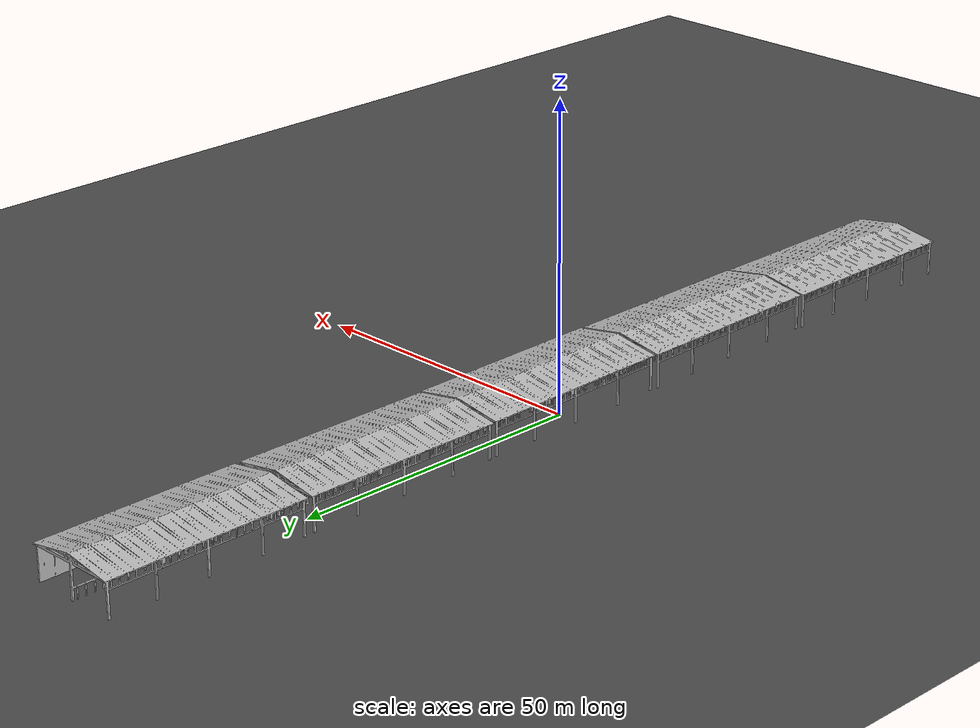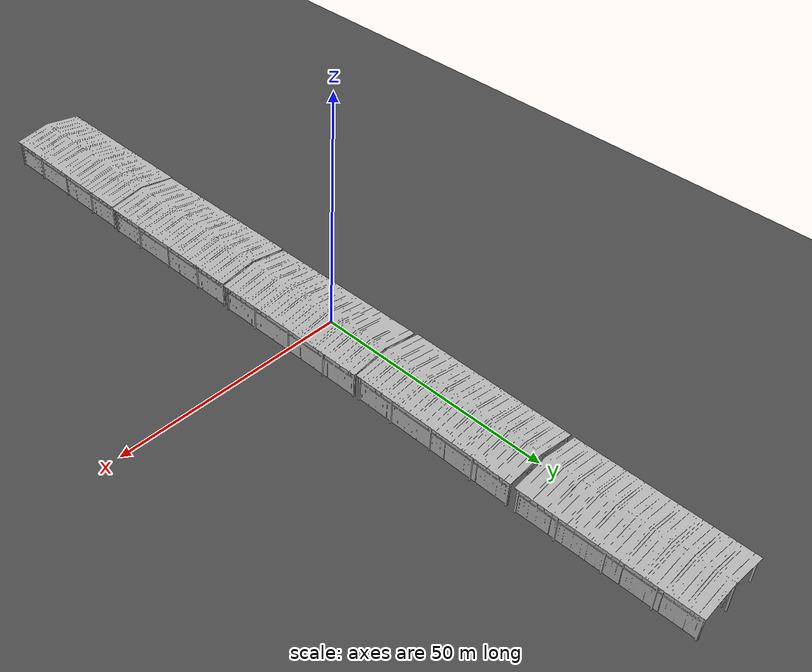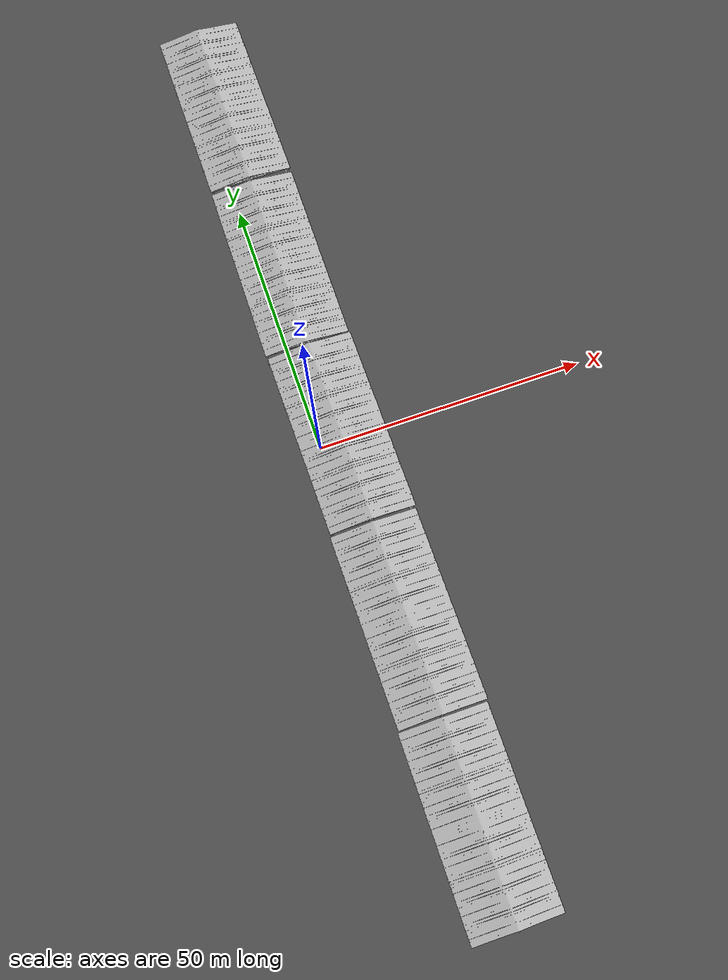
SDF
<sdf version="1.7">
 <world name="default">
  <model name="ground_plane">
   <static>1</static>
   <link name="link">
    <collision name="collision">
     <geometry><plane><normal>0 0 1</normal><size>2000 2000</size></plane></geometry>
     <surface>
      <contact><collide_bitmask>65535</collide_bitmask></contact>
      <friction><ode><mu>100</mu><mu2>50</mu2></ode></friction>
     </surface>
    </collision>
    <visual name="visual">
     <cast_shadows>0</cast_shadows>
     <geometry><plane><normal>0 0 1</normal><size>200 200</size></plane></geometry>
     <material>
      <script><uri>file://media/materials/scripts/gazebo.material</uri><name>Gazebo/DarkGrey</name></script>
     </material>
    </visual>
   </link>
  </model>
  <gravity>0 0 -9.8</gravity>
  <magnetic_field>6e-06 2.3e-05 -4.2e-05</magnetic_field>
  <atmosphere type="adiabatic"/>
  <physics type="ode">
   <max_step_size>0.001</max_step_size>
   <real_time_factor>1</real_time_factor>
   <real_time_update_rate>1000</real_time_update_rate>
  </physics>
  <scene><ambient>0.4 0.4 0.4 1</ambient><background>0.7 0.7 0.7 1</background><shadows>1</shadows></scene>
  <spherical_coordinates>
   <surface_model>EARTH_WGS84</surface_model>
   <latitude_deg>0</latitude_deg>
   <longitude_deg>0</longitude_deg>
   <elevation>0</elevation>
   <heading_deg>0</heading_deg>
  </spherical_coordinates>
  <model name="barn_model">
   <link name="link">
    <inertial>
     <pose>0 0 0 1.5708 -0 0</pose>
     <mass>1</mass>
     <inertia><ixx>24.88</ixx><ixy>0</ixy><ixz>0</ixz><iyy>25.73</iyy><iyz>0</iyz><izz>2.48</izz></inertia>
    </inertial>
    <collision name="bottom">
     <pose>-0.1 -0.1 -0.1 1.5708 -0 0</pose>
     <geometry><box><size>20 20 0.01</size></box></geometry>
    </collision>
    <collision name="barn"><geometry><mesh><uri>model://barn/meshes/barn.obj</uri></mesh></geometry></collision>
    <visual name="visual"><geometry><mesh><uri>model://barn/meshes/barn.obj</uri></mesh></geometry></visual>
   </link>
   <pose>0.021914 0.084875 0.140333 1.5708 -0.001337 0.012962</pose>
  </model>
  <model name="barn_model_clone">
   <link name="link">
    <inertial>
     <pose>0 0 0 1.5708 -0 0</pose>
     <mass>1</mass>
     <inertia><ixx>24.88</ixx><ixy>0</ixy><ixz>0</ixz><iyy>25.73</iyy><iyz>0</iyz><izz>2.48</izz></inertia>
    </inertial>
    <collision name="bottom">
     <pose>-0.1 -0.1 -0.1 1.5708 -0 0</pose>
     <geometry><box><size>20 20 0.01</size></box></geometry>
    </collision>
    <collision name="barn"><geometry><mesh><uri>model://barn/meshes/barn.obj</uri></mesh></geometry></collision>
    <visual name="visual"><geometry><mesh><uri>model://barn/meshes/barn.obj</uri></mesh></geometry></visual>
   </link>
   <pose>0.241326 -34.8953 0.140337 1.5708 -0.001335 0.010268</pose>
  </model>
  <model name="barn_model_clone_0">
   <link name="link">
    <inertial>
     <pose>0 0 0 1.5708 -0 0</pose>
     <mass>1</mass>
     <inertia><ixx>24.88</ixx><ixy>0</ixy><ixz>0</ixz><iyy>25.73</iyy><iyz>0</iyz><izz>2.48</izz></inertia>
    </inertial>
    <collision name="bottom">
     <pose>-0.1 -0.1 -0.1 1.5708 -0 0</pose>
     <geometry><box><size>20 20 0.01</size></box></geometry>
    </collision>
    <collision name="barn"><geometry><mesh><uri>model://barn/meshes/barn.obj</uri></mesh></geometry></collision>
    <visual name="visual"><geometry><mesh><uri>model://barn/meshes/barn.obj</uri></mesh></geometry></visual>
   </link>
   <pose>-0.319562 35.0885 0.140334 1.5708 -0.001336 -0.005224</pose>
  </model>
  <model name="barn_model_clone_1">
   <link name="link">
    <inertial>
     <pose>0 0 0 1.5708 -0 0</pose>
     <mass>1</mass>
     <inertia><ixx>24.88</ixx><ixy>0</ixy><ixz>0</ixz><iyy>25.73</iyy><iyz>0</iyz><izz>2.48</izz></inertia>
    </inertial>
    <collision name="bottom">
     <pose>-0.1 -0.1 -0.1 1.5708 -0 0</pose>
     <geometry><box><size>20 20 0.01</size></box></geometry>
    </collision>
    <collision name="barn"><geometry><mesh><uri>model://barn/meshes/barn.obj</uri></mesh></geometry></collision>
    <visual name="visual"><geometry><mesh><uri>model://barn/meshes/barn.obj</uri></mesh></geometry></visual>
   </link>
   <pose>-0.299103 70.3723 0.140337 1.5708 -0.001335 0.006819</pose>
  </model>
  <model name="barn_model_clone_2">
   <link name="link">
    <inertial>
     <pose>0 0 0 1.5708 -0 0</pose>
     <mass>1</mass>
     <inertia><ixx>24.88</ixx><ixy>0</ixy><ixz>0</ixz><iyy>25.73</iyy><iyz>0</iyz><izz>2.48</izz></inertia>
    </inertial>
    <collision name="bottom">
     <pose>-0.1 -0.1 -0.1 1.5708 -0 0</pose>
     <geometry><box><size>20 20 0.01</size></box></geometry>
    </collision>
    <collision name="barn"><geometry><mesh><uri>model://barn/meshes/barn.obj</uri></mesh></geometry></collision>
    <visual name="visual"><geometry><mesh><uri>model://barn/meshes/barn.obj</uri></mesh></geometry></visual>
   </link>
   <pose>0.267842 -69.7118 0.140337 1.5708 -0.001335 0.002888</pose>
  </model>
  <light name="user_point_light_0" type="point">
   <pose>0.747153 -0.055905 1 0 -0 0</pose>
   <diffuse>0.5 0.5 0.5 1</diffuse>
   <specular>0.1 0.1 0.1 1</specular>
   <attenuation>
    <range>20</range>
    <constant>0.5</constant>
    <linear>0.01</linear>
    <quadratic>0.001</quadratic>
   </attenuation>
   <cast_shadows>0</cast_shadows>
   <direction>0 0 -1</direction>
   <spot><inner_angle>0</inner_angle><outer_angle>0</outer_angle><falloff>0</falloff></spot>
  </light>
  <light name="user_point_light_1" type="point">
   <pose>-0.056925 -9.00053 1 0 -0 0</pose>
   <diffuse>0.5 0.5 0.5 1</diffuse>
   <specular>0.1 0.1 0.1 1</specular>
   <attenuation>
    <range>20</range>
    <constant>0.5</constant>
    <linear>0.01</linear>
    <quadratic>0.001</quadratic>
   </attenuation>
   <cast_shadows>0</cast_shadows>
   <direction>0 0 -1</direction>
   <spot><inner_angle>0</inner_angle><outer_angle>0</outer_angle><falloff>0</falloff></spot>
  </light>
  <light name="user_point_light_2" type="point">
   <pose>1.47172 -17.4098 1 0 -0 0</pose>
   <diffuse>0.5 0.5 0.5 1</diffuse>
   <specular>0.1 0.1 0.1 1</specular>
   <attenuation>
    <range>20</range>
    <constant>0.5</constant>
    <linear>0.01</linear>
    <quadratic>0.001</quadratic>
   </attenuation>
   <cast_shadows>0</cast_shadows>
   <direction>0 0 -1</direction>
   <spot><inner_angle>0</inner_angle><outer_angle>0</outer_angle><falloff>0</falloff></spot>
  </light>
  <light name="user_point_light_3" type="point">
   <pose>1.63322 -25.888 1 0 -0 0</pose>
   <diffuse>0.5 0.5 0.5 1</diffuse>
   <specular>0.1 0.1 0.1 1</specular>
   <attenuation>
    <range>20</range>
    <constant>0.5</constant>
    <linear>0.01</linear>
    <quadratic>0.001</quadratic>
   </attenuation>
   <cast_shadows>0</cast_shadows>
   <direction>0 0 -1</direction>
   <spot><inner_angle>0</inner_angle><outer_angle>0</outer_angle><falloff>0</falloff></spot>
  </light>
  <light name="user_point_light_4" type="point">
   <pose>1.68365 -34.7356 1 0 -0 0</pose>
   <diffuse>0.5 0.5 0.5 1</diffuse>
   <specular>0.1 0.1 0.1 1</specular>
   <attenuation>
    <range>20</range>
    <constant>0.5</constant>
    <linear>0.01</linear>
    <quadratic>0.001</quadratic>
   </attenuation>
   <cast_shadows>0</cast_shadows>
   <direction>0 0 -1</direction>
   <spot><inner_angle>0</inner_angle><outer_angle>0</outer_angle><falloff>0</falloff></spot>
  </light>
  <light name="user_point_light_5" type="point">
   <pose>1.72966 -43.8858 1 0 -0 0</pose>
   <diffuse>0.5 0.5 0.5 1</diffuse>
   <specular>0.1 0.1 0.1 1</specular>
   <attenuation>
    <range>20</range>
    <constant>0.5</constant>
    <linear>0.01</linear>
    <quadratic>0.001</quadratic>
   </attenuation>
   <cast_shadows>0</cast_shadows>
   <direction>0 0 -1</direction>
   <spot><inner_angle>0</inner_angle><outer_angle>0</outer_angle><falloff>0</falloff></spot>
  </light>
  <light name="user_point_light_6" type="point">
   <pose>2.1699 -52.1862 1 0 -0 0</pose>
   <diffuse>0.5 0.5 0.5 1</diffuse>
   <specular>0.1 0.1 0.1 1</specular>
   <attenuation>
    <range>20</range>
    <constant>0.5</constant>
    <linear>0.01</linear>
    <quadratic>0.001</quadratic>
   </attenuation>
   <cast_shadows>0</cast_shadows>
   <direction>0 0 -1</direction>
   <spot><inner_angle>0</inner_angle><outer_angle>0</outer_angle><falloff>0</falloff></spot>
  </light>
  <light name="user_point_light_7" type="point">
   <pose>2.408 -60.1722 1 0 -0 0</pose>
   <diffuse>0.5 0.5 0.5 1</diffuse>
   <specular>0.1 0.1 0.1 1</specular>
   <attenuation>
    <range>20</range>
    <constant>0.5</constant>
    <linear>0.01</linear>
    <quadratic>0.001</quadratic>
   </attenuation>
   <cast_shadows>0</cast_shadows>
   <direction>0 0 -1</direction>
   <spot><inner_angle>0</inner_angle><outer_angle>0</outer_angle><falloff>0</falloff></spot>
  </light>
  <light name="user_point_light_8" type="point">
   <pose>2.46489 -69.5949 1 0 -0 0</pose>
   <diffuse>0.5 0.5 0.5 1</diffuse>
   <specular>0.1 0.1 0.1 1</specular>
   <attenuation>
    <range>20</range>
    <constant>0.5</constant>
    <linear>0.01</linear>
    <quadratic>0.001</quadratic>
   </attenuation>
   <cast_shadows>0</cast_shadows>
   <direction>0 0 -1</direction>
   <spot><inner_angle>0</inner_angle><outer_angle>0</outer_angle><falloff>0</falloff></spot>
  </light>
  <light name="user_point_light_9" type="point">
   <pose>2.76039 -78.8338 1 0 -0 0</pose>
   <diffuse>0.5 0.5 0.5 1</diffuse>
   <specular>0.1 0.1 0.1 1</specular>
   <attenuation>
    <range>20</range>
    <constant>0.5</constant>
    <linear>0.01</linear>
    <quadratic>0.001</quadratic>
   </attenuation>
   <cast_shadows>0</cast_shadows>
   <direction>0 0 -1</direction>
   <spot><inner_angle>0</inner_angle><outer_angle>0</outer_angle><falloff>0</falloff></spot>
  </light>
  <light name="user_point_light_10" type="point">
   <pose>2.65406 -86.5635 1 0 -0 0</pose>
   <diffuse>0.5 0.5 0.5 1</diffuse>
   <specular>0.1 0.1 0.1 1</specular>
   <attenuation>
    <range>20</range>
    <constant>0.5</constant>
    <linear>0.01</linear>
    <quadratic>0.001</quadratic>
   </attenuation>
   <cast_shadows>0</cast_shadows>
   <direction>0 0 -1</direction>
   <spot><inner_angle>0</inner_angle><outer_angle>0</outer_angle><falloff>0</falloff></spot>
  </light>
  <light name="user_point_light_11" type="point">
   <pose>0.740481 8.99319 1 0 -0 0</pose>
   <diffuse>0.5 0.5 0.5 1</diffuse>
   <specular>0.1 0.1 0.1 1</specular>
   <attenuation>
    <range>20</range>
    <constant>0.5</constant>
    <linear>0.01</linear>
    <quadratic>0.001</quadratic>
   </attenuation>
   <cast_shadows>0</cast_shadows>
   <direction>0 0 -1</direction>
   <spot><inner_angle>0</inner_angle><outer_angle>0</outer_angle><falloff>0</falloff></spot>
  </light>
  <light name="user_point_light_12" type="point">
   <pose>1.10054 17.7334 1 0 -0 0</pose>
   <diffuse>0.5 0.5 0.5 1</diffuse>
   <specular>0.1 0.1 0.1 1</specular>
   <attenuation>
    <range>20</range>
    <constant>0.5</constant>
    <linear>0.01</linear>
    <quadratic>0.001</quadratic>
   </attenuation>
   <cast_shadows>0</cast_shadows>
   <direction>0 0 -1</direction>
   <spot><inner_angle>0</inner_angle><outer_angle>0</outer_angle><falloff>0</falloff></spot>
  </light>
  <light name="user_point_light_13" type="point">
   <pose>2.64846 25.9478 1 0 -0 0</pose>
   <diffuse>0.5 0.5 0.5 1</diffuse>
   <specular>0.1 0.1 0.1 1</specular>
   <attenuation>
    <range>20</range>
    <constant>0.5</constant>
    <linear>0.01</linear>
    <quadratic>0.001</quadratic>
   </attenuation>
   <cast_shadows>0</cast_shadows>
   <direction>0 0 -1</direction>
   <spot><inner_angle>0</inner_angle><outer_angle>0</outer_angle><falloff>0</falloff></spot>
  </light>
  <light name="user_point_light_14" type="point">
   <pose>1.90149 35.5985 1 0 -0 0</pose>
   <diffuse>0.5 0.5 0.5 1</diffuse>
   <specular>0.1 0.1 0.1 1</specular>
   <attenuation>
    <range>20</range>
    <constant>0.5</constant>
    <linear>0.01</linear>
    <quadratic>0.001</quadratic>
   </attenuation>
   <cast_shadows>0</cast_shadows>
   <direction>0 0 -1</direction>
   <spot><inner_angle>0</inner_angle><outer_angle>0</outer_angle><falloff>0</falloff></spot>
  </light>
  <light name="user_point_light_15" type="point">
   <pose>1.88656 44.0094 1 0 -0 0</pose>
   <diffuse>0.5 0.5 0.5 1</diffuse>
   <specular>0.1 0.1 0.1 1</specular>
   <attenuation>
    <range>20</range>
    <constant>0.5</constant>
    <linear>0.01</linear>
    <quadratic>0.001</quadratic>
   </attenuation>
   <cast_shadows>0</cast_shadows>
   <direction>0 0 -1</direction>
   <spot><inner_angle>0</inner_angle><outer_angle>0</outer_angle><falloff>0</falloff></spot>
  </light>
  <light name="user_point_light_16" type="point">
   <pose>2.5998 52.8758 1 0 -0 0</pose>
   <diffuse>0.5 0.5 0.5 1</diffuse>
   <specular>0.1 0.1 0.1 1</specular>
   <attenuation>
    <range>20</range>
    <constant>0.5</constant>
    <linear>0.01</linear>
    <quadratic>0.001</quadratic>
   </attenuation>
   <cast_shadows>0</cast_shadows>
   <direction>0 0 -1</direction>
   <spot><inner_angle>0</inner_angle><outer_angle>0</outer_angle><falloff>0</falloff></spot>
  </light>
  <light name="user_point_light_17" type="point">
   <pose>2.82487 61.2246 1 0 -0 0</pose>
   <diffuse>0.5 0.5 0.5 1</diffuse>
   <specular>0.1 0.1 0.1 1</specular>
   <attenuation>
    <range>20</range>
    <constant>0.5</constant>
    <linear>0.01</linear>
    <quadratic>0.001</quadratic>
   </attenuation>
   <cast_shadows>0</cast_shadows>
   <direction>0 0 -1</direction>
   <spot><inner_angle>0</inner_angle><outer_angle>0</outer_angle><falloff>0</falloff></spot>
  </light>
  <light name="user_point_light_18" type="point">
   <pose>2.60216 70.4877 1 0 -0 0</pose>
   <diffuse>0.5 0.5 0.5 1</diffuse>
   <specular>0.1 0.1 0.1 1</specular>
   <attenuation>
    <range>20</range>
    <constant>0.5</constant>
    <linear>0.01</linear>
    <quadratic>0.001</quadratic>
   </attenuation>
   <cast_shadows>0</cast_shadows>
   <direction>0 0 -1</direction>
   <spot><inner_angle>0</inner_angle><outer_angle>0</outer_angle><falloff>0</falloff></spot>
  </light>
  <light name="user_point_light_19" type="point">
   <pose>2.64413 79.0994 1 0 -0 0</pose>
   <diffuse>0.5 0.5 0.5 1</diffuse>
   <specular>0.1 0.1 0.1 1</specular>
   <attenuation>
    <range>20</range>
    <constant>0.5</constant>
    <linear>0.01</linear>
    <quadratic>0.001</quadratic>
   </attenuation>
   <cast_shadows>0</cast_shadows>
   <direction>0 0 -1</direction>
   <spot><inner_angle>0</inner_angle><outer_angle>0</outer_angle><falloff>0</falloff></spot>
  </light>
  <light name="user_point_light_20" type="point">
   <pose>2.38825 87.4925 1 0 -0 0</pose>
   <diffuse>0.5 0.5 0.5 1</diffuse>
   <specular>0.1 0.1 0.1 1</specular>
   <attenuation>
    <range>20</range>
    <constant>0.5</constant>
    <linear>0.01</linear>
    <quadratic>0.001</quadratic>
   </attenuation>
   <cast_shadows>0</cast_shadows>
   <direction>0 0 -1</direction>
   <spot><inner_angle>0</inner_angle><outer_angle>0</outer_angle><falloff>0</falloff></spot>
  </light>
 </world>
</sdf>
